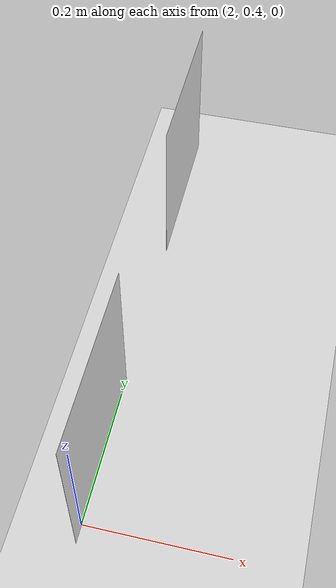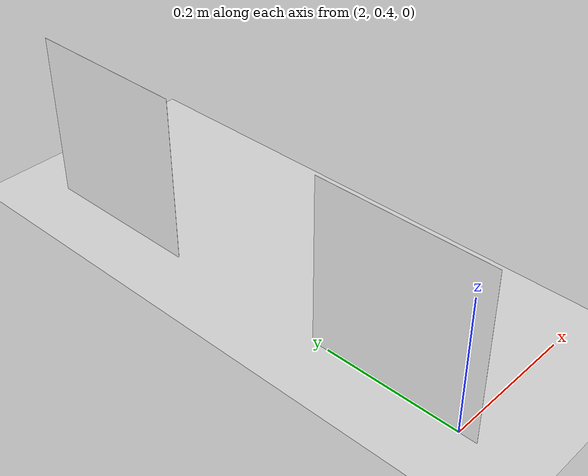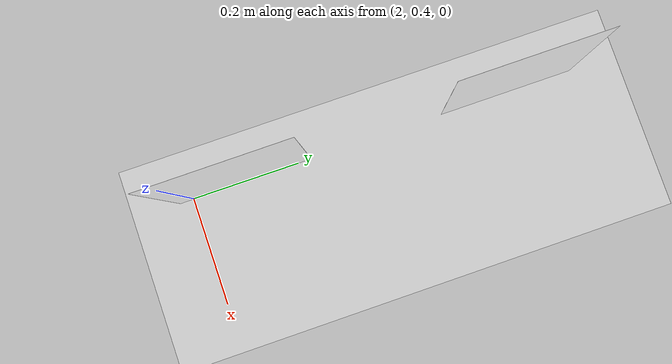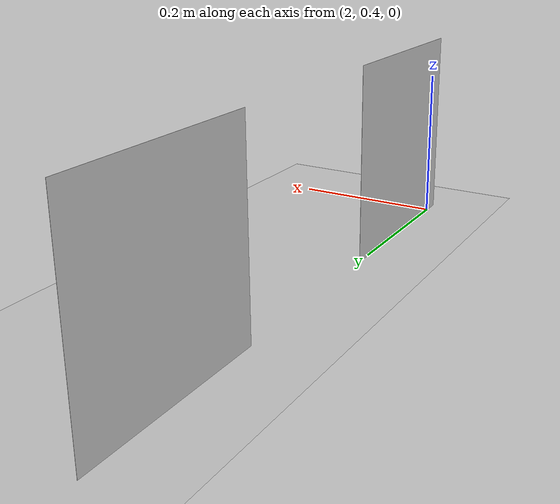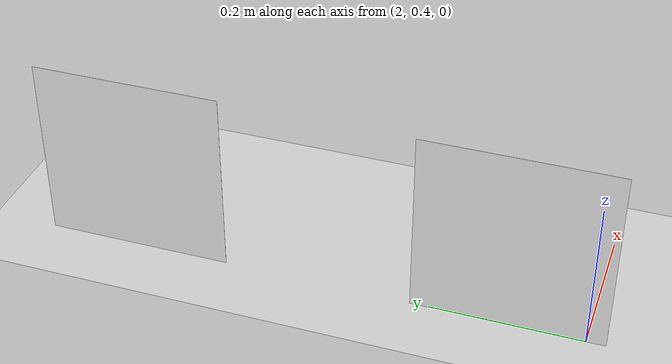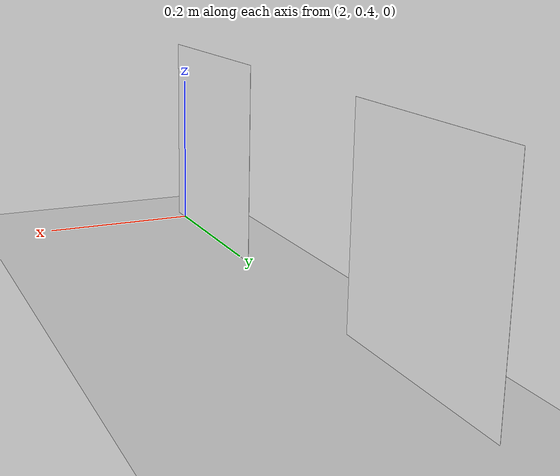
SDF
<?xml version="1.0" ?>
<sdf version="1.9">
  <world name="empty">
    <physics type="ode">
      <max_step_size>0.001</max_step_size>
      <real_time_factor>1.0</real_time_factor>
      <real_time_update_rate>1000</real_time_update_rate>
    </physics>
    <plugin name='gz::sim::systems::Physics' filename='libgz-sim-physics-system.so'/>
    <plugin name='gz::sim::systems::UserCommands' filename='libgz-sim-user-commands-system.so'/>
    <plugin name='gz::sim::systems::SceneBroadcaster' filename='libgz-sim-scene-broadcaster-system.so'/>
    <plugin name='gz::sim::systems::Contact' filename='libgz-sim-contact-system.so'/>
    <plugin name='gz::sim::systems::Imu' filename='libgz-sim-imu-system.so'/>
    <plugin name='gz::sim::systems::AirPressure' filename='libgz-sim-air-pressure-system.so'/>
    <plugin name='gz::sim::systems::Sensors' filename='libgz-sim-sensors-system.so'>
      <render_engine>ogre2</render_engine>
    </plugin>
    <gravity>0 0 -9.80665</gravity>
    <magnetic_field>6e-06 2.3e-05 -4.2e-05</magnetic_field>
    <atmosphere type='adiabatic'/>
    <scene>
      <grid>false</grid>
      <ambient>0.4 0.4 0.4 1</ambient>
      <background>0.7 0.7 0.7 1</background>
      <shadows>true</shadows>
    </scene>
    <model name="ground_plane">
      <static>true</static>
      <link name="link">
        <collision name="collision">
          <geometry>
            <plane>
              <normal>0 0 1</normal>
              <size>100 100</size>
            </plane>
          </geometry>
        </collision>
        <visual name="visual">
          <geometry>
            <plane>
              <normal>0 0 1</normal>
              <size>100 100</size>
            </plane>
          </geometry>
          <material>
            <ambient>0.8 0.8 0.8 1</ambient>
            <diffuse>0.8 0.8 0.8 1</diffuse>
            <specular>0.8 0.8 0.8 1</specular>
          </material>
        </visual>
      </link>
    </model>
    <include>
      <pose>2.0 1.0 0.125 1.57 0.0 -1.57</pose>
      <uri>model://aruco_markers/aruco_marker_1</uri>
    </include>
    <include>
      <pose>2.0 0.5 0.125 1.57 0.0 -1.57</pose>
      <uri>model://aruco_markers/aruco_marker_2</uri>
    </include>
    <light type="directional" name="sun">
      <cast_shadows>true</cast_shadows>
      <pose>0 0 10 0 0 0</pose>
      <diffuse>0.8 0.8 0.8 1</diffuse>
      <specular>0.2 0.2 0.2 1</specular>
      <attenuation>
        <range>1000</range>
        <constant>0.9</constant>
        <linear>0.01</linear>
        <quadratic>0.001</quadratic>
      </attenuation>
      <direction>-0.5 0.1 -0.9</direction>
    </light>
  </world>
</sdf>

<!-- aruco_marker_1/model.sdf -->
<sdf version="1.9">
  <model name="aruco_marker_1">
    <static>false</static>
    <link name="link">
      <gravity>false</gravity>
      <inertial>
        <mass>0.01</mass>
        <inertia>
          <ixx>0.00001</ixx>
          <iyy>0.00001</iyy>
          <izz>0.00001</izz>
        </inertia>
      </inertial>
      <!-- ArUco Marker 0 -->
      <collision name="aruco_marker_1_col">
        <pose>0 0 0 0 0 0</pose>
        <geometry>
          <box>
            <size>0.25 0.25 0.001</size>
          </box>
        </geometry>
      </collision>
      <visual name="aruco_marker_1_vis">
        <pose>0 0 0 0 0 0</pose> <!-- Position: x, y, z; Rotation: roll, pitch, yaw -->
        <geometry>
          <plane>
            <normal>0 0 1</normal> <!-- Normal vector for the plane -->
            <size>0.25 0.25</size>   <!-- Size of the marker (e.g., 10cm x 10cm) -->
          </plane>
        </geometry>
        <material>
          <pbr>
            <metal>
              <albedo_map>marker_0001.png</albedo_map>
              <metalness>0.0</metalness>
            </metal>
          </pbr>
          <ambient>1 1 1 1</ambient>
          <diffuse>1 1 1 1</diffuse>
          <specular>0 0 0 1</specular>
        </material>
      </visual>
    </link>
  </model>
</sdf>

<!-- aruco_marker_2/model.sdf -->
<sdf version="1.9">
  <model name="aruco_marker_2">
    <static>false</static>
    <link name="link">
      <gravity>false</gravity>
      <inertial>
        <mass>0.01</mass>
        <inertia>
          <ixx>0.00001</ixx>
          <iyy>0.00001</iyy>
          <izz>0.00001</izz>
        </inertia>
      </inertial>
      <!-- ArUco Marker 0 -->
      <collision name="aruco_marker_2_col">
        <pose>0 0 0 0 0 0</pose>
        <geometry>
          <box>
            <size>0.25 0.25 0.001</size>
          </box>
        </geometry>
      </collision>
      <visual name="aruco_marker_2_vis">
        <pose>0 0 0 0 0 0</pose> <!-- Position: x, y, z; Rotation: roll, pitch, yaw -->
        <geometry>
          <plane>
            <normal>0 0 1</normal> <!-- Normal vector for the plane -->
            <size>0.25 0.25</size>   <!-- Size of the marker (e.g., 10cm x 10cm) -->
          </plane>
        </geometry>
        <material>
          <pbr>
            <metal>
              <albedo_map>marker_0002.png</albedo_map>
              <metalness>0.0</metalness>
            </metal>
          </pbr>
          <ambient>1 1 1 1</ambient>
          <diffuse>1 1 1 1</diffuse>
          <specular>0 0 0 1</specular>
        </material>
      </visual>
    </link>
  </model>
</sdf>
